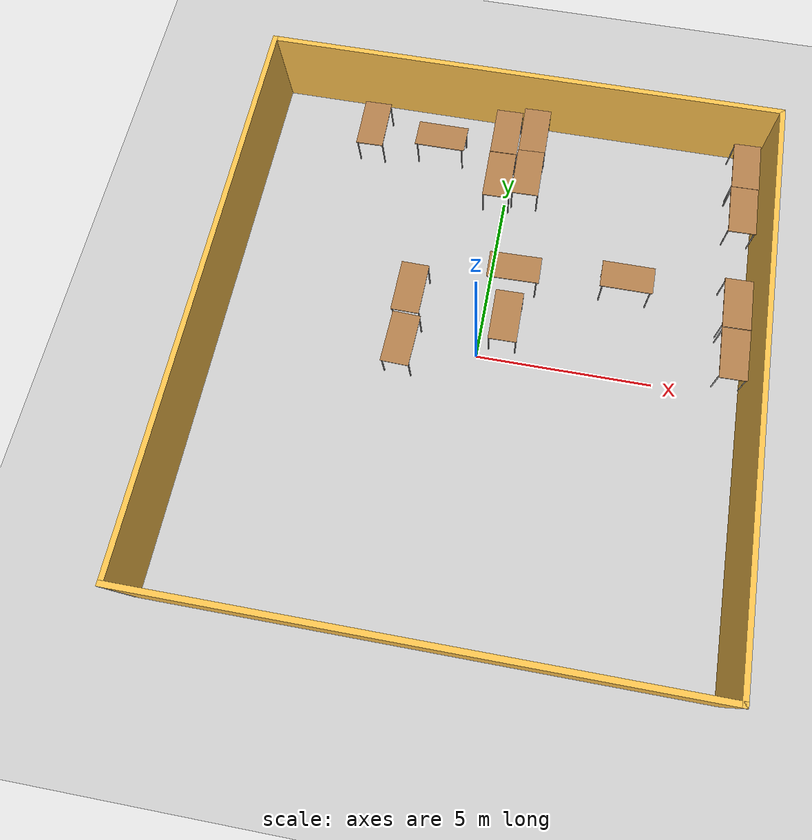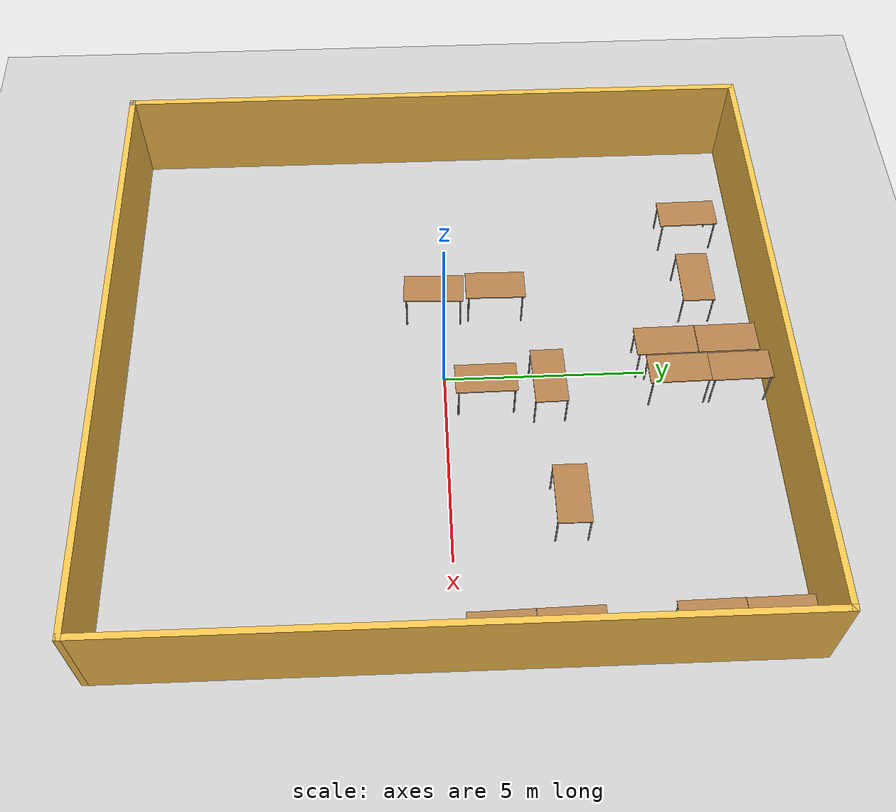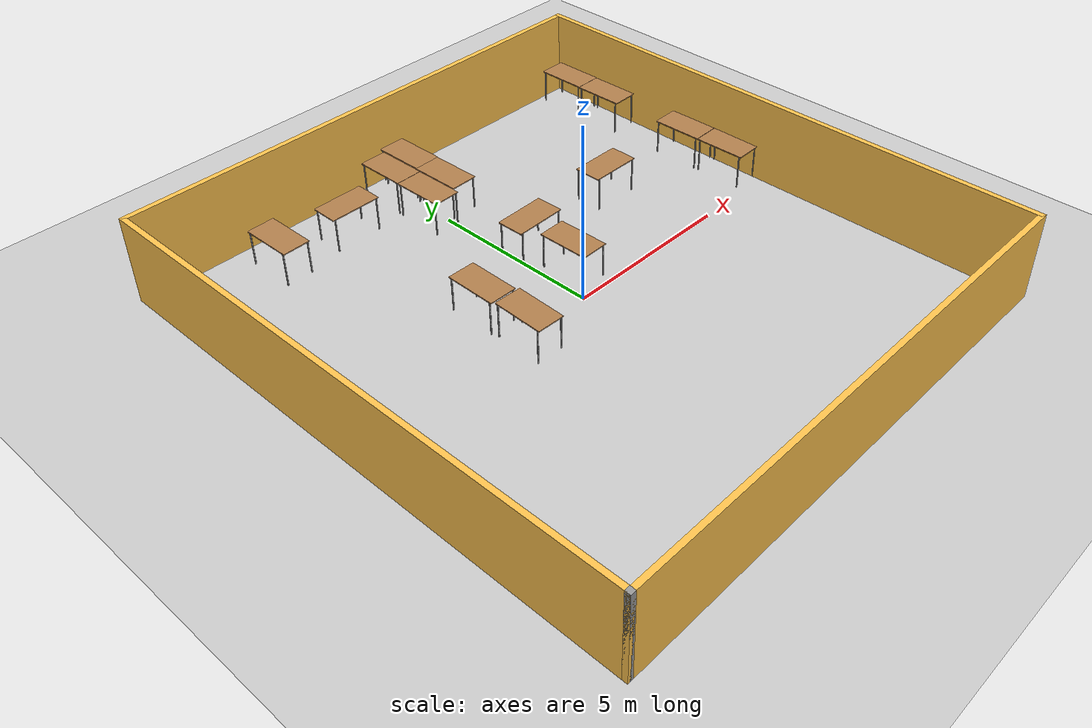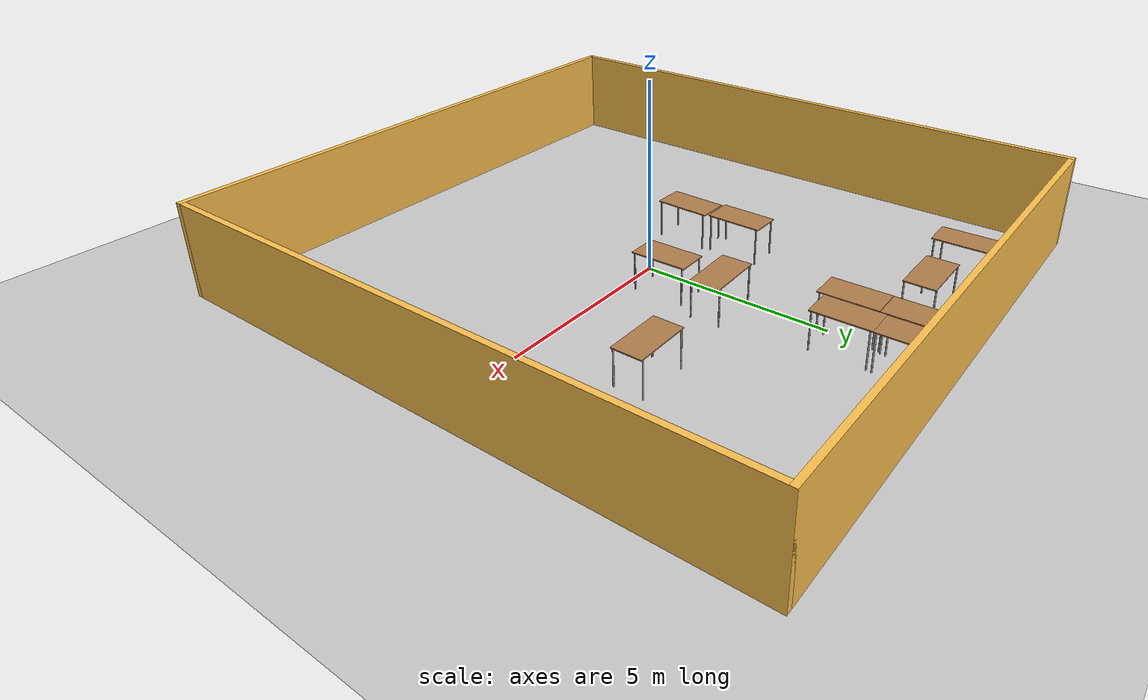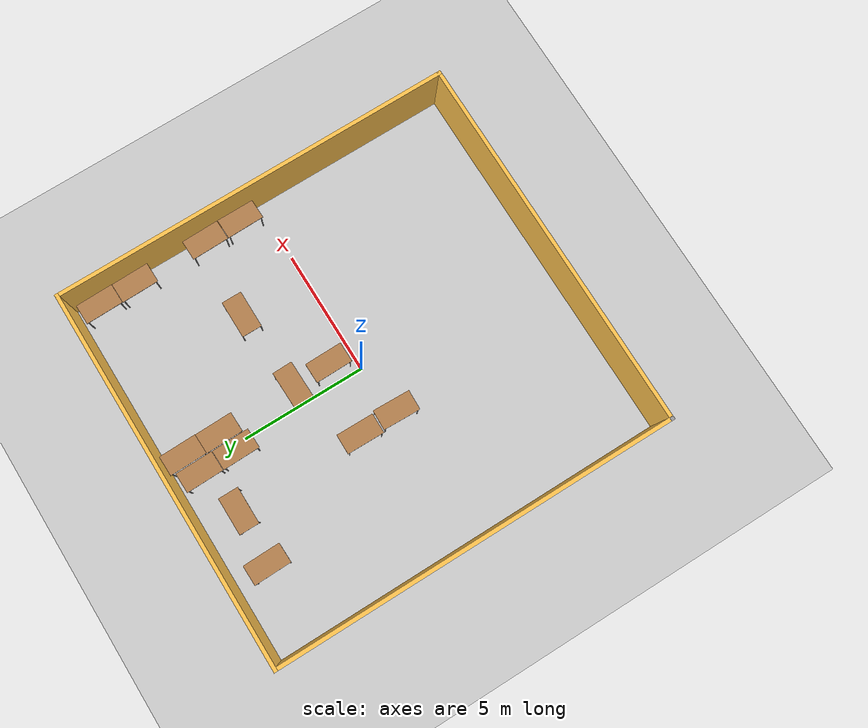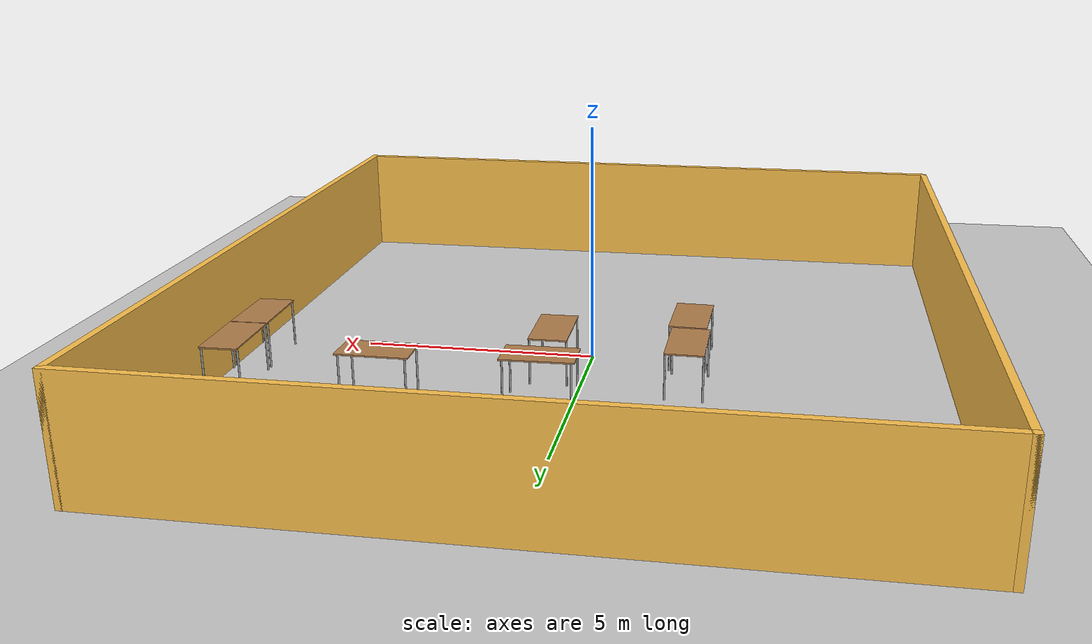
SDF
<sdf version="1.7">
 <world name="default">
  <model name="ground_plane">
   <static>1</static>
   <link name="link">
    <collision name="collision">
     <geometry><plane><normal>0 0 1</normal><size>100 100</size></plane></geometry>
     <surface>
      <contact><collide_bitmask>65535</collide_bitmask></contact>
      <friction><ode><mu>100</mu><mu2>50</mu2></ode></friction>
     </surface>
    </collision>
    <visual name="visual">
     <cast_shadows>0</cast_shadows>
     <geometry><plane><normal>0 0 1</normal><size>100 100</size></plane></geometry>
     <material>
      <script><uri>file://media/materials/scripts/gazebo.material</uri><name>Gazebo/Grey</name></script>
     </material>
    </visual>
   </link>
  </model>
  <model name="RRC">
   <link name="Wall_0">
    <collision name="Wall_0_Collision">
     <geometry><box><size>16.15 0.15 2.5</size></box></geometry>
     <pose>0 0 1.25 0 -0 0</pose>
    </collision>
    <visual name="Wall_0_Visual">
     <pose>0 0 1.25 0 -0 0</pose>
     <geometry><box><size>16.15 0.15 2.5</size></box></geometry>
     <material>
      <script><uri>file://media/materials/scripts/gazebo.material</uri><name>Gazebo/Grey</name></script>
      <ambient>1 0.764706 0.305882 1</ambient>
     </material>
     <meta><layer>0</layer></meta>
    </visual>
    <pose>-7.5 0 0 0 -0 1.5708</pose>
   </link>
   <link name="Wall_1">
    <collision name="Wall_1_Collision">
     <geometry><box><size>15.15 0.15 2.5</size></box></geometry>
     <pose>0 0 1.25 0 -0 0</pose>
    </collision>
    <visual name="Wall_1_Visual">
     <pose>0 0 1.25 0 -0 0</pose>
     <geometry><box><size>15.15 0.15 2.5</size></box></geometry>
     <material>
      <script><uri>file://media/materials/scripts/gazebo.material</uri><name>Gazebo/Grey</name></script>
      <ambient>1 0.764706 0.305882 1</ambient>
     </material>
     <meta><layer>0</layer></meta>
    </visual>
    <pose>0 8 0 0 -0 0</pose>
   </link>
   <link name="Wall_2">
    <collision name="Wall_2_Collision">
     <geometry><box><size>16.15 0.15 2.5</size></box></geometry>
     <pose>0 0 1.25 0 -0 0</pose>
    </collision>
    <visual name="Wall_2_Visual">
     <pose>0 0 1.25 0 -0 0</pose>
     <geometry><box><size>16.15 0.15 2.5</size></box></geometry>
     <material>
      <script><uri>file://media/materials/scripts/gazebo.material</uri><name>Gazebo/Grey</name></script>
      <ambient>1 0.764706 0.305882 1</ambient>
     </material>
     <meta><layer>0</layer></meta>
    </visual>
    <pose>7.5 0 0 0 -0 -1.5708</pose>
   </link>
   <link name="Wall_3">
    <collision name="Wall_3_Collision">
     <geometry><box><size>15.15 0.15 2.5</size></box></geometry>
     <pose>0 0 1.25 0 -0 0</pose>
    </collision>
    <visual name="Wall_3_Visual">
     <pose>0 0 1.25 0 -0 0</pose>
     <geometry><box><size>15.15 0.15 2.5</size></box></geometry>
     <material>
      <script><uri>file://media/materials/scripts/gazebo.material</uri><name>Gazebo/Grey</name></script>
      <ambient>1 0.764706 0.305882 1</ambient>
     </material>
     <meta><layer>0</layer></meta>
    </visual>
    <pose>0 -8 0 0 -0 3.14159</pose>
   </link>
   <link name="Wall_4">
    <collision name="Wall_4_Collision">
     <geometry><box><size>0.15 0.15 2.5</size></box></geometry>
     <pose>0 0 1.25 0 -0 0</pose>
    </collision>
    <visual name="Wall_4_Visual">
     <pose>0 0 1.25 0 -0 0</pose>
     <geometry><box><size>0.15 0.15 2.5</size></box></geometry>
     <material>
      <script><uri>file://media/materials/scripts/gazebo.material</uri><name>Gazebo/Grey</name></script>
      <ambient>1 1 1 1</ambient>
     </material>
     <meta><layer>0</layer></meta>
    </visual>
    <pose>-7.5 -8 0 0 -0 0</pose>
   </link>
   <static>1</static>
  </model>
  <model name="table_clone_0">
   <static>1</static>
   <link name="link">
    <collision name="surface">
     <pose>0 0 1 0 -0 0</pose>
     <geometry><box><size>1.5 0.8 0.03</size></box></geometry>
     <surface><friction><ode><mu>0.6</mu><mu2>0.6</mu2></ode></friction></surface>
    </collision>
    <visual name="visual1">
     <pose>0 0 1 0 -0 0</pose>
     <geometry><box><size>1.5 0.8 0.03</size></box></geometry>
     <material>
      <script><uri>file://media/materials/scripts/gazebo.material</uri><name>Gazebo/Wood</name></script>
     </material>
    </visual>
    <collision name="front_left_leg">
     <pose>0.68 0.38 0.5 0 -0 0</pose>
     <geometry><cylinder><radius>0.02</radius><length>1</length></cylinder></geometry>
    </collision>
    <visual name="front_left_leg">
     <pose>0.68 0.38 0.5 0 -0 0</pose>
     <geometry><cylinder><radius>0.02</radius><length>1</length></cylinder></geometry>
     <material>
      <script><uri>file://media/materials/scripts/gazebo.material</uri><name>Gazebo/Grey</name></script>
     </material>
    </visual>
    <collision name="front_right_leg">
     <pose>0.68 -0.38 0.5 0 -0 0</pose>
     <geometry><cylinder><radius>0.02</radius><length>1</length></cylinder></geometry>
    </collision>
    <visual name="front_right_leg">
     <pose>0.68 -0.38 0.5 0 -0 0</pose>
     <geometry><cylinder><radius>0.02</radius><length>1</length></cylinder></geometry>
     <material>
      <script><uri>file://media/materials/scripts/gazebo.material</uri><name>Gazebo/Grey</name></script>
     </material>
    </visual>
    <collision name="back_right_leg">
     <pose>-0.68 -0.38 0.5 0 -0 0</pose>
     <geometry><cylinder><radius>0.02</radius><length>1</length></cylinder></geometry>
    </collision>
    <visual name="back_right_leg">
     <pose>-0.68 -0.38 0.5 0 -0 0</pose>
     <geometry><cylinder><radius>0.02</radius><length>1</length></cylinder></geometry>
     <material>
      <script><uri>file://media/materials/scripts/gazebo.material</uri><name>Gazebo/Grey</name></script>
     </material>
    </visual>
    <collision name="back_left_leg">
     <pose>-0.68 0.38 0.5 0 -0 0</pose>
     <geometry><cylinder><radius>0.02</radius><length>1</length></cylinder></geometry>
    </collision>
    <visual name="back_left_leg">
     <pose>-0.68 0.38 0.5 0 -0 0</pose>
     <geometry><cylinder><radius>0.02</radius><length>1</length></cylinder></geometry>
     <material>
      <script><uri>file://media/materials/scripts/gazebo.material</uri><name>Gazebo/Grey</name></script>
     </material>
    </visual>
   </link>
   <pose>-2.21488 6.47115 0 0 -0 0</pose>
  </model>
  <model name="table_clone_0_clone_0">
   <static>1</static>
   <link name="link">
    <collision name="surface">
     <pose>0 0 1 0 -0 0</pose>
     <geometry><box><size>1.5 0.8 0.03</size></box></geometry>
     <surface><friction><ode><mu>0.6</mu><mu2>0.6</mu2></ode></friction></surface>
    </collision>
    <visual name="visual1">
     <pose>0 0 1 0 -0 0</pose>
     <geometry><box><size>1.5 0.8 0.03</size></box></geometry>
     <material>
      <script><uri>file://media/materials/scripts/gazebo.material</uri><name>Gazebo/Wood</name></script>
     </material>
    </visual>
    <collision name="front_left_leg">
     <pose>0.68 0.38 0.5 0 -0 0</pose>
     <geometry><cylinder><radius>0.02</radius><length>1</length></cylinder></geometry>
    </collision>
    <visual name="front_left_leg">
     <pose>0.68 0.38 0.5 0 -0 0</pose>
     <geometry><cylinder><radius>0.02</radius><length>1</length></cylinder></geometry>
     <material>
      <script><uri>file://media/materials/scripts/gazebo.material</uri><name>Gazebo/Grey</name></script>
     </material>
    </visual>
    <collision name="front_right_leg">
     <pose>0.68 -0.38 0.5 0 -0 0</pose>
     <geometry><cylinder><radius>0.02</radius><length>1</length></cylinder></geometry>
    </collision>
    <visual name="front_right_leg">
     <pose>0.68 -0.38 0.5 0 -0 0</pose>
     <geometry><cylinder><radius>0.02</radius><length>1</length></cylinder></geometry>
     <material>
      <script><uri>file://media/materials/scripts/gazebo.material</uri><name>Gazebo/Grey</name></script>
     </material>
    </visual>
    <collision name="back_right_leg">
     <pose>-0.68 -0.38 0.5 0 -0 0</pose>
     <geometry><cylinder><radius>0.02</radius><length>1</length></cylinder></geometry>
    </collision>
    <visual name="back_right_leg">
     <pose>-0.68 -0.38 0.5 0 -0 0</pose>
     <geometry><cylinder><radius>0.02</radius><length>1</length></cylinder></geometry>
     <material>
      <script><uri>file://media/materials/scripts/gazebo.material</uri><name>Gazebo/Grey</name></script>
     </material>
    </visual>
    <collision name="back_left_leg">
     <pose>-0.68 0.38 0.5 0 -0 0</pose>
     <geometry><cylinder><radius>0.02</radius><length>1</length></cylinder></geometry>
    </collision>
    <visual name="back_left_leg">
     <pose>-0.68 0.38 0.5 0 -0 0</pose>
     <geometry><cylinder><radius>0.02</radius><length>1</length></cylinder></geometry>
     <material>
      <script><uri>file://media/materials/scripts/gazebo.material</uri><name>Gazebo/Grey</name></script>
     </material>
    </visual>
   </link>
   <pose>-4.33016 6.56363 0 0 -0 1.58908</pose>
  </model>
  <model name="table_clone_0_clone_clone">
   <static>1</static>
   <link name="link">
    <collision name="surface">
     <pose>0 0 1 0 -0 0</pose>
     <geometry><box><size>1.5 0.8 0.03</size></box></geometry>
     <surface><friction><ode><mu>0.6</mu><mu2>0.6</mu2></ode></friction></surface>
    </collision>
    <visual name="visual1">
     <pose>0 0 1 0 -0 0</pose>
     <geometry><box><size>1.5 0.8 0.03</size></box></geometry>
     <material>
      <script><uri>file://media/materials/scripts/gazebo.material</uri><name>Gazebo/Wood</name></script>
     </material>
    </visual>
    <collision name="front_left_leg">
     <pose>0.68 0.38 0.5 0 -0 0</pose>
     <geometry><cylinder><radius>0.02</radius><length>1</length></cylinder></geometry>
    </collision>
    <visual name="front_left_leg">
     <pose>0.68 0.38 0.5 0 -0 0</pose>
     <geometry><cylinder><radius>0.02</radius><length>1</length></cylinder></geometry>
     <material>
      <script><uri>file://media/materials/scripts/gazebo.material</uri><name>Gazebo/Grey</name></script>
     </material>
    </visual>
    <collision name="front_right_leg">
     <pose>0.68 -0.38 0.5 0 -0 0</pose>
     <geometry><cylinder><radius>0.02</radius><length>1</length></cylinder></geometry>
    </collision>
    <visual name="front_right_leg">
     <pose>0.68 -0.38 0.5 0 -0 0</pose>
     <geometry><cylinder><radius>0.02</radius><length>1</length></cylinder></geometry>
     <material>
      <script><uri>file://media/materials/scripts/gazebo.material</uri><name>Gazebo/Grey</name></script>
     </material>
    </visual>
    <collision name="back_right_leg">
     <pose>-0.68 -0.38 0.5 0 -0 0</pose>
     <geometry><cylinder><radius>0.02</radius><length>1</length></cylinder></geometry>
    </collision>
    <visual name="back_right_leg">
     <pose>-0.68 -0.38 0.5 0 -0 0</pose>
     <geometry><cylinder><radius>0.02</radius><length>1</length></cylinder></geometry>
     <material>
      <script><uri>file://media/materials/scripts/gazebo.material</uri><name>Gazebo/Grey</name></script>
     </material>
    </visual>
    <collision name="back_left_leg">
     <pose>-0.68 0.38 0.5 0 -0 0</pose>
     <geometry><cylinder><radius>0.02</radius><length>1</length></cylinder></geometry>
    </collision>
    <visual name="back_left_leg">
     <pose>-0.68 0.38 0.5 0 -0 0</pose>
     <geometry><cylinder><radius>0.02</radius><length>1</length></cylinder></geometry>
     <material>
      <script><uri>file://media/materials/scripts/gazebo.material</uri><name>Gazebo/Grey</name></script>
     </material>
    </visual>
   </link>
   <pose>-0.295656 6.95966 0 0 -0 1.58908</pose>
  </model>
  <model name="table_clone_0_clone_clone_0">
   <static>1</static>
   <link name="link">
    <collision name="surface">
     <pose>0 0 1 0 -0 0</pose>
     <geometry><box><size>1.5 0.8 0.03</size></box></geometry>
     <surface><friction><ode><mu>0.6</mu><mu2>0.6</mu2></ode></friction></surface>
    </collision>
    <visual name="visual1">
     <pose>0 0 1 0 -0 0</pose>
     <geometry><box><size>1.5 0.8 0.03</size></box></geometry>
     <material>
      <script><uri>file://media/materials/scripts/gazebo.material</uri><name>Gazebo/Wood</name></script>
     </material>
    </visual>
    <collision name="front_left_leg">
     <pose>0.68 0.38 0.5 0 -0 0</pose>
     <geometry><cylinder><radius>0.02</radius><length>1</length></cylinder></geometry>
    </collision>
    <visual name="front_left_leg">
     <pose>0.68 0.38 0.5 0 -0 0</pose>
     <geometry><cylinder><radius>0.02</radius><length>1</length></cylinder></geometry>
     <material>
      <script><uri>file://media/materials/scripts/gazebo.material</uri><name>Gazebo/Grey</name></script>
     </material>
    </visual>
    <collision name="front_right_leg">
     <pose>0.68 -0.38 0.5 0 -0 0</pose>
     <geometry><cylinder><radius>0.02</radius><length>1</length></cylinder></geometry>
    </collision>
    <visual name="front_right_leg">
     <pose>0.68 -0.38 0.5 0 -0 0</pose>
     <geometry><cylinder><radius>0.02</radius><length>1</length></cylinder></geometry>
     <material>
      <script><uri>file://media/materials/scripts/gazebo.material</uri><name>Gazebo/Grey</name></script>
     </material>
    </visual>
    <collision name="back_right_leg">
     <pose>-0.68 -0.38 0.5 0 -0 0</pose>
     <geometry><cylinder><radius>0.02</radius><length>1</length></cylinder></geometry>
    </collision>
    <visual name="back_right_leg">
     <pose>-0.68 -0.38 0.5 0 -0 0</pose>
     <geometry><cylinder><radius>0.02</radius><length>1</length></cylinder></geometry>
     <material>
      <script><uri>file://media/materials/scripts/gazebo.material</uri><name>Gazebo/Grey</name></script>
     </material>
    </visual>
    <collision name="back_left_leg">
     <pose>-0.68 0.38 0.5 0 -0 0</pose>
     <geometry><cylinder><radius>0.02</radius><length>1</length></cylinder></geometry>
    </collision>
    <visual name="back_left_leg">
     <pose>-0.68 0.38 0.5 0 -0 0</pose>
     <geometry><cylinder><radius>0.02</radius><length>1</length></cylinder></geometry>
     <material>
      <script><uri>file://media/materials/scripts/gazebo.material</uri><name>Gazebo/Grey</name></script>
     </material>
    </visual>
   </link>
   <pose>-0.274415 5.44749 0 0 -0 1.58908</pose>
  </model>
  <model name="table_clone_0_clone_clone_clone">
   <static>1</static>
   <link name="link">
    <collision name="surface">
     <pose>0 0 1 0 -0 0</pose>
     <geometry><box><size>1.5 0.8 0.03</size></box></geometry>
     <surface><friction><ode><mu>0.6</mu><mu2>0.6</mu2></ode></friction></surface>
    </collision>
    <visual name="visual1">
     <pose>0 0 1 0 -0 0</pose>
     <geometry><box><size>1.5 0.8 0.03</size></box></geometry>
     <material>
      <script><uri>file://media/materials/scripts/gazebo.material</uri><name>Gazebo/Wood</name></script>
     </material>
    </visual>
    <collision name="front_left_leg">
     <pose>0.68 0.38 0.5 0 -0 0</pose>
     <geometry><cylinder><radius>0.02</radius><length>1</length></cylinder></geometry>
    </collision>
    <visual name="front_left_leg">
     <pose>0.68 0.38 0.5 0 -0 0</pose>
     <geometry><cylinder><radius>0.02</radius><length>1</length></cylinder></geometry>
     <material>
      <script><uri>file://media/materials/scripts/gazebo.material</uri><name>Gazebo/Grey</name></script>
     </material>
    </visual>
    <collision name="front_right_leg">
     <pose>0.68 -0.38 0.5 0 -0 0</pose>
     <geometry><cylinder><radius>0.02</radius><length>1</length></cylinder></geometry>
    </collision>
    <visual name="front_right_leg">
     <pose>0.68 -0.38 0.5 0 -0 0</pose>
     <geometry><cylinder><radius>0.02</radius><length>1</length></cylinder></geometry>
     <material>
      <script><uri>file://media/materials/scripts/gazebo.material</uri><name>Gazebo/Grey</name></script>
     </material>
    </visual>
    <collision name="back_right_leg">
     <pose>-0.68 -0.38 0.5 0 -0 0</pose>
     <geometry><cylinder><radius>0.02</radius><length>1</length></cylinder></geometry>
    </collision>
    <visual name="back_right_leg">
     <pose>-0.68 -0.38 0.5 0 -0 0</pose>
     <geometry><cylinder><radius>0.02</radius><length>1</length></cylinder></geometry>
     <material>
      <script><uri>file://media/materials/scripts/gazebo.material</uri><name>Gazebo/Grey</name></script>
     </material>
    </visual>
    <collision name="back_left_leg">
     <pose>-0.68 0.38 0.5 0 -0 0</pose>
     <geometry><cylinder><radius>0.02</radius><length>1</length></cylinder></geometry>
    </collision>
    <visual name="back_left_leg">
     <pose>-0.68 0.38 0.5 0 -0 0</pose>
     <geometry><cylinder><radius>0.02</radius><length>1</length></cylinder></geometry>
     <material>
      <script><uri>file://media/materials/scripts/gazebo.material</uri><name>Gazebo/Grey</name></script>
     </material>
    </visual>
   </link>
   <pose>0.539492 7.15927 0 0 -0 1.58908</pose>
  </model>
  <model name="table_clone_0_clone_clone_clone_0">
   <static>1</static>
   <link name="link">
    <collision name="surface">
     <pose>0 0 1 0 -0 0</pose>
     <geometry><box><size>1.5 0.8 0.03</size></box></geometry>
     <surface><friction><ode><mu>0.6</mu><mu2>0.6</mu2></ode></friction></surface>
    </collision>
    <visual name="visual1">
     <pose>0 0 1 0 -0 0</pose>
     <geometry><box><size>1.5 0.8 0.03</size></box></geometry>
     <material>
      <script><uri>file://media/materials/scripts/gazebo.material</uri><name>Gazebo/Wood</name></script>
     </material>
    </visual>
    <collision name="front_left_leg">
     <pose>0.68 0.38 0.5 0 -0 0</pose>
     <geometry><cylinder><radius>0.02</radius><length>1</length></cylinder></geometry>
    </collision>
    <visual name="front_left_leg">
     <pose>0.68 0.38 0.5 0 -0 0</pose>
     <geometry><cylinder><radius>0.02</radius><length>1</length></cylinder></geometry>
     <material>
      <script><uri>file://media/materials/scripts/gazebo.material</uri><name>Gazebo/Grey</name></script>
     </material>
    </visual>
    <collision name="front_right_leg">
     <pose>0.68 -0.38 0.5 0 -0 0</pose>
     <geometry><cylinder><radius>0.02</radius><length>1</length></cylinder></geometry>
    </collision>
    <visual name="front_right_leg">
     <pose>0.68 -0.38 0.5 0 -0 0</pose>
     <geometry><cylinder><radius>0.02</radius><length>1</length></cylinder></geometry>
     <material>
      <script><uri>file://media/materials/scripts/gazebo.material</uri><name>Gazebo/Grey</name></script>
     </material>
    </visual>
    <collision name="back_right_leg">
     <pose>-0.68 -0.38 0.5 0 -0 0</pose>
     <geometry><cylinder><radius>0.02</radius><length>1</length></cylinder></geometry>
    </collision>
    <visual name="back_right_leg">
     <pose>-0.68 -0.38 0.5 0 -0 0</pose>
     <geometry><cylinder><radius>0.02</radius><length>1</length></cylinder></geometry>
     <material>
      <script><uri>file://media/materials/scripts/gazebo.material</uri><name>Gazebo/Grey</name></script>
     </material>
    </visual>
    <collision name="back_left_leg">
     <pose>-0.68 0.38 0.5 0 -0 0</pose>
     <geometry><cylinder><radius>0.02</radius><length>1</length></cylinder></geometry>
    </collision>
    <visual name="back_left_leg">
     <pose>-0.68 0.38 0.5 0 -0 0</pose>
     <geometry><cylinder><radius>0.02</radius><length>1</length></cylinder></geometry>
     <material>
      <script><uri>file://media/materials/scripts/gazebo.material</uri><name>Gazebo/Grey</name></script>
     </material>
    </visual>
   </link>
   <pose>0.553868 5.6672 0 0 -0 1.58908</pose>
  </model>
  <model name="table_clone_0_clone_1">
   <static>1</static>
   <link name="link">
    <collision name="surface">
     <pose>0 0 1 0 -0 0</pose>
     <geometry><box><size>1.5 0.8 0.03</size></box></geometry>
     <surface><friction><ode><mu>0.6</mu><mu2>0.6</mu2></ode></friction></surface>
    </collision>
    <visual name="visual1">
     <pose>0 0 1 0 -0 0</pose>
     <geometry><box><size>1.5 0.8 0.03</size></box></geometry>
     <material>
      <script><uri>file://media/materials/scripts/gazebo.material</uri><name>Gazebo/Wood</name></script>
     </material>
    </visual>
    <collision name="front_left_leg">
     <pose>0.68 0.38 0.5 0 -0 0</pose>
     <geometry><cylinder><radius>0.02</radius><length>1</length></cylinder></geometry>
    </collision>
    <visual name="front_left_leg">
     <pose>0.68 0.38 0.5 0 -0 0</pose>
     <geometry><cylinder><radius>0.02</radius><length>1</length></cylinder></geometry>
     <material>
      <script><uri>file://media/materials/scripts/gazebo.material</uri><name>Gazebo/Grey</name></script>
     </material>
    </visual>
    <collision name="front_right_leg">
     <pose>0.68 -0.38 0.5 0 -0 0</pose>
     <geometry><cylinder><radius>0.02</radius><length>1</length></cylinder></geometry>
    </collision>
    <visual name="front_right_leg">
     <pose>0.68 -0.38 0.5 0 -0 0</pose>
     <geometry><cylinder><radius>0.02</radius><length>1</length></cylinder></geometry>
     <material>
      <script><uri>file://media/materials/scripts/gazebo.material</uri><name>Gazebo/Grey</name></script>
     </material>
    </visual>
    <collision name="back_right_leg">
     <pose>-0.68 -0.38 0.5 0 -0 0</pose>
     <geometry><cylinder><radius>0.02</radius><length>1</length></cylinder></geometry>
    </collision>
    <visual name="back_right_leg">
     <pose>-0.68 -0.38 0.5 0 -0 0</pose>
     <geometry><cylinder><radius>0.02</radius><length>1</length></cylinder></geometry>
     <material>
      <script><uri>file://media/materials/scripts/gazebo.material</uri><name>Gazebo/Grey</name></script>
     </material>
    </visual>
    <collision name="back_left_leg">
     <pose>-0.68 0.38 0.5 0 -0 0</pose>
     <geometry><cylinder><radius>0.02</radius><length>1</length></cylinder></geometry>
    </collision>
    <visual name="back_left_leg">
     <pose>-0.68 0.38 0.5 0 -0 0</pose>
     <geometry><cylinder><radius>0.02</radius><length>1</length></cylinder></geometry>
     <material>
      <script><uri>file://media/materials/scripts/gazebo.material</uri><name>Gazebo/Grey</name></script>
     </material>
    </visual>
   </link>
   <pose>6.94327 6.99918 0 0 -0 1.58908</pose>
  </model>
  <model name="table_clone_0_clone_2">
   <static>1</static>
   <link name="link">
    <collision name="surface">
     <pose>0 0 1 0 -0 0</pose>
     <geometry><box><size>1.5 0.8 0.03</size></box></geometry>
     <surface><friction><ode><mu>0.6</mu><mu2>0.6</mu2></ode></friction></surface>
    </collision>
    <visual name="visual1">
     <pose>0 0 1 0 -0 0</pose>
     <geometry><box><size>1.5 0.8 0.03</size></box></geometry>
     <material>
      <script><uri>file://media/materials/scripts/gazebo.material</uri><name>Gazebo/Wood</name></script>
     </material>
    </visual>
    <collision name="front_left_leg">
     <pose>0.68 0.38 0.5 0 -0 0</pose>
     <geometry><cylinder><radius>0.02</radius><length>1</length></cylinder></geometry>
    </collision>
    <visual name="front_left_leg">
     <pose>0.68 0.38 0.5 0 -0 0</pose>
     <geometry><cylinder><radius>0.02</radius><length>1</length></cylinder></geometry>
     <material>
      <script><uri>file://media/materials/scripts/gazebo.material</uri><name>Gazebo/Grey</name></script>
     </material>
    </visual>
    <collision name="front_right_leg">
     <pose>0.68 -0.38 0.5 0 -0 0</pose>
     <geometry><cylinder><radius>0.02</radius><length>1</length></cylinder></geometry>
    </collision>
    <visual name="front_right_leg">
     <pose>0.68 -0.38 0.5 0 -0 0</pose>
     <geometry><cylinder><radius>0.02</radius><length>1</length></cylinder></geometry>
     <material>
      <script><uri>file://media/materials/scripts/gazebo.material</uri><name>Gazebo/Grey</name></script>
     </material>
    </visual>
    <collision name="back_right_leg">
     <pose>-0.68 -0.38 0.5 0 -0 0</pose>
     <geometry><cylinder><radius>0.02</radius><length>1</length></cylinder></geometry>
    </collision>
    <visual name="back_right_leg">
     <pose>-0.68 -0.38 0.5 0 -0 0</pose>
     <geometry><cylinder><radius>0.02</radius><length>1</length></cylinder></geometry>
     <material>
      <script><uri>file://media/materials/scripts/gazebo.material</uri><name>Gazebo/Grey</name></script>
     </material>
    </visual>
    <collision name="back_left_leg">
     <pose>-0.68 0.38 0.5 0 -0 0</pose>
     <geometry><cylinder><radius>0.02</radius><length>1</length></cylinder></geometry>
    </collision>
    <visual name="back_left_leg">
     <pose>-0.68 0.38 0.5 0 -0 0</pose>
     <geometry><cylinder><radius>0.02</radius><length>1</length></cylinder></geometry>
     <material>
      <script><uri>file://media/materials/scripts/gazebo.material</uri><name>Gazebo/Grey</name></script>
     </material>
    </visual>
   </link>
   <pose>6.95814 5.4935 0 0 -0 1.58908</pose>
  </model>
  <model name="table_clone_0_clone_4">
   <static>1</static>
   <link name="link">
    <collision name="surface">
     <pose>0 0 1 0 -0 0</pose>
     <geometry><box><size>1.5 0.8 0.03</size></box></geometry>
     <surface><friction><ode><mu>0.6</mu><mu2>0.6</mu2></ode></friction></surface>
    </collision>
    <visual name="visual1">
     <pose>0 0 1 0 -0 0</pose>
     <geometry><box><size>1.5 0.8 0.03</size></box></geometry>
     <material>
      <script><uri>file://media/materials/scripts/gazebo.material</uri><name>Gazebo/Wood</name></script>
     </material>
    </visual>
    <collision name="front_left_leg">
     <pose>0.68 0.38 0.5 0 -0 0</pose>
     <geometry><cylinder><radius>0.02</radius><length>1</length></cylinder></geometry>
    </collision>
    <visual name="front_left_leg">
     <pose>0.68 0.38 0.5 0 -0 0</pose>
     <geometry><cylinder><radius>0.02</radius><length>1</length></cylinder></geometry>
     <material>
      <script><uri>file://media/materials/scripts/gazebo.material</uri><name>Gazebo/Grey</name></script>
     </material>
    </visual>
    <collision name="front_right_leg">
     <pose>0.68 -0.38 0.5 0 -0 0</pose>
     <geometry><cylinder><radius>0.02</radius><length>1</length></cylinder></geometry>
    </collision>
    <visual name="front_right_leg">
     <pose>0.68 -0.38 0.5 0 -0 0</pose>
     <geometry><cylinder><radius>0.02</radius><length>1</length></cylinder></geometry>
     <material>
      <script><uri>file://media/materials/scripts/gazebo.material</uri><name>Gazebo/Grey</name></script>
     </material>
    </visual>
    <collision name="back_right_leg">
     <pose>-0.68 -0.38 0.5 0 -0 0</pose>
     <geometry><cylinder><radius>0.02</radius><length>1</length></cylinder></geometry>
    </collision>
    <visual name="back_right_leg">
     <pose>-0.68 -0.38 0.5 0 -0 0</pose>
     <geometry><cylinder><radius>0.02</radius><length>1</length></cylinder></geometry>
     <material>
      <script><uri>file://media/materials/scripts/gazebo.material</uri><name>Gazebo/Grey</name></script>
     </material>
    </visual>
    <collision name="back_left_leg">
     <pose>-0.68 0.38 0.5 0 -0 0</pose>
     <geometry><cylinder><radius>0.02</radius><length>1</length></cylinder></geometry>
    </collision>
    <visual name="back_left_leg">
     <pose>-0.68 0.38 0.5 0 -0 0</pose>
     <geometry><cylinder><radius>0.02</radius><length>1</length></cylinder></geometry>
     <material>
      <script><uri>file://media/materials/scripts/gazebo.material</uri><name>Gazebo/Grey</name></script>
     </material>
    </visual>
   </link>
   <pose>7.01065 2.4699 0 0 -0 1.58908</pose>
  </model>
  <model name="table_clone_0_clone_5">
   <static>1</static>
   <link name="link">
    <collision name="surface">
     <pose>0 0 1 0 -0 0</pose>
     <geometry><box><size>1.5 0.8 0.03</size></box></geometry>
     <surface><friction><ode><mu>0.6</mu><mu2>0.6</mu2></ode></friction></surface>
    </collision>
    <visual name="visual1">
     <pose>0 0 1 0 -0 0</pose>
     <geometry><box><size>1.5 0.8 0.03</size></box></geometry>
     <material>
      <script><uri>file://media/materials/scripts/gazebo.material</uri><name>Gazebo/Wood</name></script>
     </material>
    </visual>
    <collision name="front_left_leg">
     <pose>0.68 0.38 0.5 0 -0 0</pose>
     <geometry><cylinder><radius>0.02</radius><length>1</length></cylinder></geometry>
    </collision>
    <visual name="front_left_leg">
     <pose>0.68 0.38 0.5 0 -0 0</pose>
     <geometry><cylinder><radius>0.02</radius><length>1</length></cylinder></geometry>
     <material>
      <script><uri>file://media/materials/scripts/gazebo.material</uri><name>Gazebo/Grey</name></script>
     </material>
    </visual>
    <collision name="front_right_leg">
     <pose>0.68 -0.38 0.5 0 -0 0</pose>
     <geometry><cylinder><radius>0.02</radius><length>1</length></cylinder></geometry>
    </collision>
    <visual name="front_right_leg">
     <pose>0.68 -0.38 0.5 0 -0 0</pose>
     <geometry><cylinder><radius>0.02</radius><length>1</length></cylinder></geometry>
     <material>
      <script><uri>file://media/materials/scripts/gazebo.material</uri><name>Gazebo/Grey</name></script>
     </material>
    </visual>
    <collision name="back_right_leg">
     <pose>-0.68 -0.38 0.5 0 -0 0</pose>
     <geometry><cylinder><radius>0.02</radius><length>1</length></cylinder></geometry>
    </collision>
    <visual name="back_right_leg">
     <pose>-0.68 -0.38 0.5 0 -0 0</pose>
     <geometry><cylinder><radius>0.02</radius><length>1</length></cylinder></geometry>
     <material>
      <script><uri>file://media/materials/scripts/gazebo.material</uri><name>Gazebo/Grey</name></script>
     </material>
    </visual>
    <collision name="back_left_leg">
     <pose>-0.68 0.38 0.5 0 -0 0</pose>
     <geometry><cylinder><radius>0.02</radius><length>1</length></cylinder></geometry>
    </collision>
    <visual name="back_left_leg">
     <pose>-0.68 0.38 0.5 0 -0 0</pose>
     <geometry><cylinder><radius>0.02</radius><length>1</length></cylinder></geometry>
     <material>
      <script><uri>file://media/materials/scripts/gazebo.material</uri><name>Gazebo/Grey</name></script>
     </material>
    </visual>
   </link>
   <pose>7.03829 0.952201 0 0 -0 1.58908</pose>
  </model>
  <model name="table_clone_2">
   <static>1</static>
   <link name="link">
    <collision name="surface">
     <pose>0 0 1 0 -0 0</pose>
     <geometry><box><size>1.5 0.8 0.03</size></box></geometry>
     <surface><friction><ode><mu>0.6</mu><mu2>0.6</mu2></ode></friction></surface>
    </collision>
    <visual name="visual1">
     <pose>0 0 1 0 -0 0</pose>
     <geometry><box><size>1.5 0.8 0.03</size></box></geometry>
     <material>
      <script><uri>file://media/materials/scripts/gazebo.material</uri><name>Gazebo/Wood</name></script>
     </material>
    </visual>
    <collision name="front_left_leg">
     <pose>0.68 0.38 0.5 0 -0 0</pose>
     <geometry><cylinder><radius>0.02</radius><length>1</length></cylinder></geometry>
    </collision>
    <visual name="front_left_leg">
     <pose>0.68 0.38 0.5 0 -0 0</pose>
     <geometry><cylinder><radius>0.02</radius><length>1</length></cylinder></geometry>
     <material>
      <script><uri>file://media/materials/scripts/gazebo.material</uri><name>Gazebo/Grey</name></script>
     </material>
    </visual>
    <collision name="front_right_leg">
     <pose>0.68 -0.38 0.5 0 -0 0</pose>
     <geometry><cylinder><radius>0.02</radius><length>1</length></cylinder></geometry>
    </collision>
    <visual name="front_right_leg">
     <pose>0.68 -0.38 0.5 0 -0 0</pose>
     <geometry><cylinder><radius>0.02</radius><length>1</length></cylinder></geometry>
     <material>
      <script><uri>file://media/materials/scripts/gazebo.material</uri><name>Gazebo/Grey</name></script>
     </material>
    </visual>
    <collision name="back_right_leg">
     <pose>-0.68 -0.38 0.5 0 -0 0</pose>
     <geometry><cylinder><radius>0.02</radius><length>1</length></cylinder></geometry>
    </collision>
    <visual name="back_right_leg">
     <pose>-0.68 -0.38 0.5 0 -0 0</pose>
     <geometry><cylinder><radius>0.02</radius><length>1</length></cylinder></geometry>
     <material>
      <script><uri>file://media/materials/scripts/gazebo.material</uri><name>Gazebo/Grey</name></script>
     </material>
    </visual>
    <collision name="back_left_leg">
     <pose>-0.68 0.38 0.5 0 -0 0</pose>
     <geometry><cylinder><radius>0.02</radius><length>1</length></cylinder></geometry>
    </collision>
    <visual name="back_left_leg">
     <pose>-0.68 0.38 0.5 0 -0 0</pose>
     <geometry><cylinder><radius>0.02</radius><length>1</length></cylinder></geometry>
     <material>
      <script><uri>file://media/materials/scripts/gazebo.material</uri><name>Gazebo/Grey</name></script>
     </material>
    </visual>
   </link>
   <pose>-2.0972 -0.193473 0 0 0 -1.60175</pose>
  </model>
  <model name="table_clone_2_clone">
   <static>1</static>
   <link name="link">
    <collision name="surface">
     <pose>0 0 1 0 -0 0</pose>
     <geometry><box><size>1.5 0.8 0.03</size></box></geometry>
     <surface><friction><ode><mu>0.6</mu><mu2>0.6</mu2></ode></friction></surface>
    </collision>
    <visual name="visual1">
     <pose>0 0 1 0 -0 0</pose>
     <geometry><box><size>1.5 0.8 0.03</size></box></geometry>
     <material>
      <script><uri>file://media/materials/scripts/gazebo.material</uri><name>Gazebo/Wood</name></script>
     </material>
    </visual>
    <collision name="front_left_leg">
     <pose>0.68 0.38 0.5 0 -0 0</pose>
     <geometry><cylinder><radius>0.02</radius><length>1</length></cylinder></geometry>
    </collision>
    <visual name="front_left_leg">
     <pose>0.68 0.38 0.5 0 -0 0</pose>
     <geometry><cylinder><radius>0.02</radius><length>1</length></cylinder></geometry>
     <material>
      <script><uri>file://media/materials/scripts/gazebo.material</uri><name>Gazebo/Grey</name></script>
     </material>
    </visual>
    <collision name="front_right_leg">
     <pose>0.68 -0.38 0.5 0 -0 0</pose>
     <geometry><cylinder><radius>0.02</radius><length>1</length></cylinder></geometry>
    </collision>
    <visual name="front_right_leg">
     <pose>0.68 -0.38 0.5 0 -0 0</pose>
     <geometry><cylinder><radius>0.02</radius><length>1</length></cylinder></geometry>
     <material>
      <script><uri>file://media/materials/scripts/gazebo.material</uri><name>Gazebo/Grey</name></script>
     </material>
    </visual>
    <collision name="back_right_leg">
     <pose>-0.68 -0.38 0.5 0 -0 0</pose>
     <geometry><cylinder><radius>0.02</radius><length>1</length></cylinder></geometry>
    </collision>
    <visual name="back_right_leg">
     <pose>-0.68 -0.38 0.5 0 -0 0</pose>
     <geometry><cylinder><radius>0.02</radius><length>1</length></cylinder></geometry>
     <material>
      <script><uri>file://media/materials/scripts/gazebo.material</uri><name>Gazebo/Grey</name></script>
     </material>
    </visual>
    <collision name="back_left_leg">
     <pose>-0.68 0.38 0.5 0 -0 0</pose>
     <geometry><cylinder><radius>0.02</radius><length>1</length></cylinder></geometry>
    </collision>
    <visual name="back_left_leg">
     <pose>-0.68 0.38 0.5 0 -0 0</pose>
     <geometry><cylinder><radius>0.02</radius><length>1</length></cylinder></geometry>
     <material>
      <script><uri>file://media/materials/scripts/gazebo.material</uri><name>Gazebo/Grey</name></script>
     </material>
    </visual>
   </link>
   <pose>-2.14415 1.36821 0 0 -0 1.55913</pose>
  </model>
  <model name="table_clone_2_clone_clone">
   <static>1</static>
   <link name="link">
    <collision name="surface">
     <pose>0 0 1 0 -0 0</pose>
     <geometry><box><size>1.5 0.8 0.03</size></box></geometry>
     <surface><friction><ode><mu>0.6</mu><mu2>0.6</mu2></ode></friction></surface>
    </collision>
    <visual name="visual1">
     <pose>0 0 1 0 -0 0</pose>
     <geometry><box><size>1.5 0.8 0.03</size></box></geometry>
     <material>
      <script><uri>file://media/materials/scripts/gazebo.material</uri><name>Gazebo/Wood</name></script>
     </material>
    </visual>
    <collision name="front_left_leg">
     <pose>0.68 0.38 0.5 0 -0 0</pose>
     <geometry><cylinder><radius>0.02</radius><length>1</length></cylinder></geometry>
    </collision>
    <visual name="front_left_leg">
     <pose>0.68 0.38 0.5 0 -0 0</pose>
     <geometry><cylinder><radius>0.02</radius><length>1</length></cylinder></geometry>
     <material>
      <script><uri>file://media/materials/scripts/gazebo.material</uri><name>Gazebo/Grey</name></script>
     </material>
    </visual>
    <collision name="front_right_leg">
     <pose>0.68 -0.38 0.5 0 -0 0</pose>
     <geometry><cylinder><radius>0.02</radius><length>1</length></cylinder></geometry>
    </collision>
    <visual name="front_right_leg">
     <pose>0.68 -0.38 0.5 0 -0 0</pose>
     <geometry><cylinder><radius>0.02</radius><length>1</length></cylinder></geometry>
     <material>
      <script><uri>file://media/materials/scripts/gazebo.material</uri><name>Gazebo/Grey</name></script>
     </material>
    </visual>
    <collision name="back_right_leg">
     <pose>-0.68 -0.38 0.5 0 -0 0</pose>
     <geometry><cylinder><radius>0.02</radius><length>1</length></cylinder></geometry>
    </collision>
    <visual name="back_right_leg">
     <pose>-0.68 -0.38 0.5 0 -0 0</pose>
     <geometry><cylinder><radius>0.02</radius><length>1</length></cylinder></geometry>
     <material>
      <script><uri>file://media/materials/scripts/gazebo.material</uri><name>Gazebo/Grey</name></script>
     </material>
    </visual>
    <collision name="back_left_leg">
     <pose>-0.68 0.38 0.5 0 -0 0</pose>
     <geometry><cylinder><radius>0.02</radius><length>1</length></cylinder></geometry>
    </collision>
    <visual name="back_left_leg">
     <pose>-0.68 0.38 0.5 0 -0 0</pose>
     <geometry><cylinder><radius>0.02</radius><length>1</length></cylinder></geometry>
     <material>
      <script><uri>file://media/materials/scripts/gazebo.material</uri><name>Gazebo/Grey</name></script>
     </material>
    </visual>
   </link>
   <pose>0.650558 2.50401 0 0 -0 0.020412</pose>
  </model>
  <model name="table_clone_2_clone_clone_clone">
   <static>1</static>
   <link name="link">
    <collision name="surface">
     <pose>0 0 1 0 -0 0</pose>
     <geometry><box><size>1.5 0.8 0.03</size></box></geometry>
     <surface><friction><ode><mu>0.6</mu><mu2>0.6</mu2></ode></friction></surface>
    </collision>
    <visual name="visual1">
     <pose>0 0 1 0 -0 0</pose>
     <geometry><box><size>1.5 0.8 0.03</size></box></geometry>
     <material>
      <script><uri>file://media/materials/scripts/gazebo.material</uri><name>Gazebo/Wood</name></script>
     </material>
    </visual>
    <collision name="front_left_leg">
     <pose>0.68 0.38 0.5 0 -0 0</pose>
     <geometry><cylinder><radius>0.02</radius><length>1</length></cylinder></geometry>
    </collision>
    <visual name="front_left_leg">
     <pose>0.68 0.38 0.5 0 -0 0</pose>
     <geometry><cylinder><radius>0.02</radius><length>1</length></cylinder></geometry>
     <material>
      <script><uri>file://media/materials/scripts/gazebo.material</uri><name>Gazebo/Grey</name></script>
     </material>
    </visual>
    <collision name="front_right_leg">
     <pose>0.68 -0.38 0.5 0 -0 0</pose>
     <geometry><cylinder><radius>0.02</radius><length>1</length></cylinder></geometry>
    </collision>
    <visual name="front_right_leg">
     <pose>0.68 -0.38 0.5 0 -0 0</pose>
     <geometry><cylinder><radius>0.02</radius><length>1</length></cylinder></geometry>
     <material>
      <script><uri>file://media/materials/scripts/gazebo.material</uri><name>Gazebo/Grey</name></script>
     </material>
    </visual>
    <collision name="back_right_leg">
     <pose>-0.68 -0.38 0.5 0 -0 0</pose>
     <geometry><cylinder><radius>0.02</radius><length>1</length></cylinder></geometry>
    </collision>
    <visual name="back_right_leg">
     <pose>-0.68 -0.38 0.5 0 -0 0</pose>
     <geometry><cylinder><radius>0.02</radius><length>1</length></cylinder></geometry>
     <material>
      <script><uri>file://media/materials/scripts/gazebo.material</uri><name>Gazebo/Grey</name></script>
     </material>
    </visual>
    <collision name="back_left_leg">
     <pose>-0.68 0.38 0.5 0 -0 0</pose>
     <geometry><cylinder><radius>0.02</radius><length>1</length></cylinder></geometry>
    </collision>
    <visual name="back_left_leg">
     <pose>-0.68 0.38 0.5 0 -0 0</pose>
     <geometry><cylinder><radius>0.02</radius><length>1</length></cylinder></geometry>
     <material>
      <script><uri>file://media/materials/scripts/gazebo.material</uri><name>Gazebo/Grey</name></script>
     </material>
    </visual>
   </link>
   <pose>0.664986 0.980658 0 0 0 -1.55798</pose>
  </model>
  <model name="table_clone_3_clone">
   <static>1</static>
   <link name="link">
    <collision name="surface">
     <pose>0 0 1 0 -0 0</pose>
     <geometry><box><size>1.5 0.8 0.03</size></box></geometry>
     <surface><friction><ode><mu>0.6</mu><mu2>0.6</mu2></ode></friction></surface>
    </collision>
    <visual name="visual1">
     <pose>0 0 1 0 -0 0</pose>
     <geometry><box><size>1.5 0.8 0.03</size></box></geometry>
     <material>
      <script><uri>file://media/materials/scripts/gazebo.material</uri><name>Gazebo/Wood</name></script>
     </material>
    </visual>
    <collision name="front_left_leg">
     <pose>0.68 0.38 0.5 0 -0 0</pose>
     <geometry><cylinder><radius>0.02</radius><length>1</length></cylinder></geometry>
    </collision>
    <visual name="front_left_leg">
     <pose>0.68 0.38 0.5 0 -0 0</pose>
     <geometry><cylinder><radius>0.02</radius><length>1</length></cylinder></geometry>
     <material>
      <script><uri>file://media/materials/scripts/gazebo.material</uri><name>Gazebo/Grey</name></script>
     </material>
    </visual>
    <collision name="front_right_leg">
     <pose>0.68 -0.38 0.5 0 -0 0</pose>
     <geometry><cylinder><radius>0.02</radius><length>1</length></cylinder></geometry>
    </collision>
    <visual name="front_right_leg">
     <pose>0.68 -0.38 0.5 0 -0 0</pose>
     <geometry><cylinder><radius>0.02</radius><length>1</length></cylinder></geometry>
     <material>
      <script><uri>file://media/materials/scripts/gazebo.material</uri><name>Gazebo/Grey</name></script>
     </material>
    </visual>
    <collision name="back_right_leg">
     <pose>-0.68 -0.38 0.5 0 -0 0</pose>
     <geometry><cylinder><radius>0.02</radius><length>1</length></cylinder></geometry>
    </collision>
    <visual name="back_right_leg">
     <pose>-0.68 -0.38 0.5 0 -0 0</pose>
     <geometry><cylinder><radius>0.02</radius><length>1</length></cylinder></geometry>
     <material>
      <script><uri>file://media/materials/scripts/gazebo.material</uri><name>Gazebo/Grey</name></script>
     </material>
    </visual>
    <collision name="back_left_leg">
     <pose>-0.68 0.38 0.5 0 -0 0</pose>
     <geometry><cylinder><radius>0.02</radius><length>1</length></cylinder></geometry>
    </collision>
    <visual name="back_left_leg">
     <pose>-0.68 0.38 0.5 0 -0 0</pose>
     <geometry><cylinder><radius>0.02</radius><length>1</length></cylinder></geometry>
     <material>
      <script><uri>file://media/materials/scripts/gazebo.material</uri><name>Gazebo/Grey</name></script>
     </material>
    </visual>
   </link>
   <pose>3.87087 2.7526 0 0 -0 0</pose>
  </model>
  <model name="cardboard_box_0">
   <pose>-4.47408 1.16094 -73067.4 0 -0 0</pose>
   <link name="link">
    <pose>3.96847 0.977565 0.149 0 -0 0</pose>
    <inertial>
     <inertia><ixx>1</ixx><ixy>0</ixy><ixz>0</ixz><iyy>1</iyy><iyz>0</iyz><izz>1</izz></inertia>
     <mass>1</mass>
    </inertial>
    <velocity>0 0 0 0 -0 0</velocity>
    <acceleration>0 -1.9e-05 0 0.000128 2e-06 0</acceleration>
    <wrench>1e-06 -3.8e-05 1e-06 0 -0 0</wrench>
   </link>
   <scale>1 1 1</scale>
  </model>
  <model name="cardboard_box_2">
   <pose>-4.88373 2.96722 -73067.2 0 -0 0</pose>
   <link name="link">
    <pose>-4.88373 2.96722 0.149 0 -0 0</pose>
    <inertial>
     <inertia><ixx>1</ixx><ixy>0</ixy><ixz>0</ixz><iyy>1</iyy><iyz>0</iyz><izz>1</izz></inertia>
     <mass>1</mass>
    </inertial>
    <velocity>0 0 0 0 -0 0</velocity>
    <acceleration>0 -1.9e-05 0 0.000128 2e-06 0</acceleration>
    <wrench>1e-06 -3.8e-05 1e-06 0 -0 0</wrench>
   </link>
   <scale>1 1 1</scale>
  </model>
  <model name="cardboard_box_3">
   <pose>-0.0158 3.98725 -73067.2 2e-06 -2e-06 -0</pose>
   <link name="link">
    <pose>-0.0158 3.98725 0.14951 2e-06 -2e-06 -0</pose>
    <inertial>
     <inertia><ixx>1</ixx><ixy>0</ixy><ixz>0</ixz><iyy>1</iyy><iyz>0</iyz><izz>1</izz></inertia>
     <mass>1</mass>
    </inertial>
    <velocity>0 0 0 0 -0 0</velocity>
    <acceleration>0 1.1e-05 0 -7.2e-05 1e-06 0</acceleration>
    <wrench>0 2.2e-05 0 0 -0 0</wrench>
   </link>
   <scale>1 1 1</scale>
  </model>
 </world>
</sdf>
